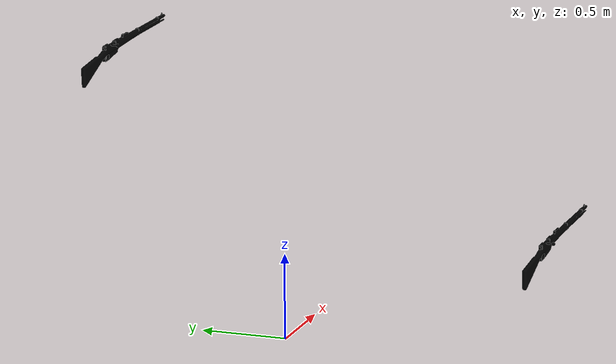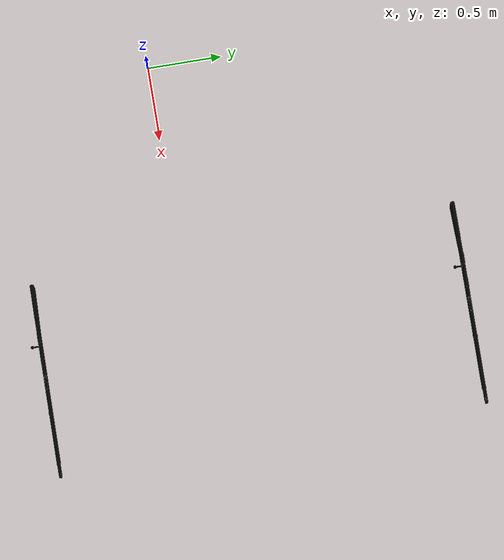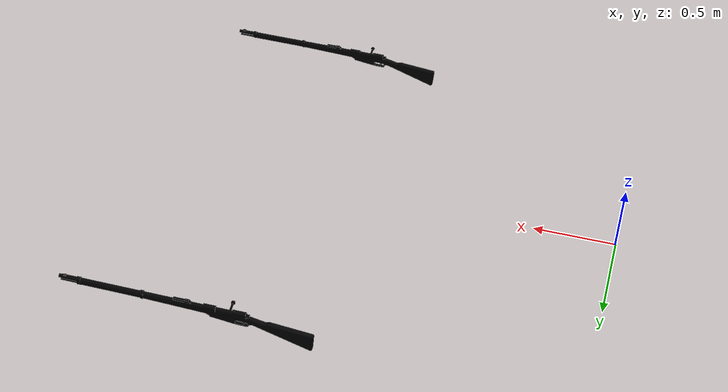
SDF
<sdf version="1.8">
 <world name="simple_trees">
  <plugin name="ignition::gazebo::systems::Physics" filename="ignition-gazebo-physics-system"/>
  <plugin name="ignition::gazebo::systems::UserCommands" filename="ignition-gazebo-user-commands-system"/>
  <plugin name="ignition::gazebo::systems::SceneBroadcaster" filename="ignition-gazebo-scene-broadcaster-system"/>
  <plugin name="ignition::gazebo::systems::Contact" filename="ignition-gazebo-contact-system"/>
  <light name="sun" type="directional">
   <pose>0 0 10 0 -0 0</pose>
   <diffuse>0.8 0.8 0.8 1</diffuse>
   <specular>0.2 0.2 0.2 1</specular>
   <attenuation>
    <range>1000</range>
    <constant>0.9</constant>
    <linear>0.01</linear>
    <quadratic>0.001</quadratic>
   </attenuation>
   <direction>-0.5 0.1 -0.9</direction>
  </light>
  <gravity>0 0 -9.81</gravity>
  <magnetic_field>6e-06 2.3e-05 -4.2e-05</magnetic_field>
  <atmosphere type="adiabatic"/>
  <physics name="default_physics" type="ignored">
   <max_step_size>0.01</max_step_size>
   <real_time_factor>1</real_time_factor>
   <real_time_update_rate>100</real_time_update_rate>
  </physics>
  <scene><ambient>1.0 1.0 1.0</ambient><background>0.8 0.8 0.8</background><shadows>1</shadows></scene>
  <spherical_coordinates>
   <latitude_deg>0.0</latitude_deg>
   <longitude_deg>0.0</longitude_deg>
   <elevation>10.0</elevation>
   <heading_deg>0</heading_deg>
   <surface_model>EARTH_WGS84</surface_model>
  </spherical_coordinates>
  <model name="grass_plane_override">
   <link name="link"><thermal><temperature>295</temperature></thermal></link>
  </model>
  <include><uri>model://gun</uri><name>Gun_1</name><pose>2 1.8 1 0 0 1.57</pose><static>true</static></include>
  <include><uri>model://gun</uri><name>Gun_2</name><pose>2 -1 0 0 0 1.57</pose><static>true</static></include>
 </world>
</sdf>

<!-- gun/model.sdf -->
<sdf version="1.6">
  <model name="gun">
    <static>true</static>
    <link name="link">
      <!-- Thermal override visual for thermal camera -->
      <visual name="heat_mesh">
        <geometry>
          <mesh>
            <uri>model://gun/meshes/gun.obj</uri>
            <scale>1 1 1</scale>
          </mesh>
        </geometry>
        <material>
          <ambient>0 0 0 0</ambient>
          <diffuse>0 0 0 0</diffuse>
          <specular>0 0 0 0</specular>
          <transparency>1.0</transparency>
        </material>
        <plugin filename="ignition-gazebo-thermal-system"
                name="ignition::gazebo::systems::Thermal">
          <temperature>323.15</temperature>
          <emissivity>0.95</emissivity>
        </plugin>
      </visual>
      <visual name="visual">
        <geometry>
          <mesh>
            <uri>model://gun/meshes/gun.obj</uri>
          </mesh>
        </geometry>
        <plugin filename="ignition-gazebo-thermal-system"
                name="ignition::gazebo::systems::Thermal">
          <temperature>300.15</temperature>
          <emissivity>0.95</emissivity>
        </plugin>
      </visual>

      <collision name="collision">
        <geometry>
          <mesh><uri>model://gun/meshes/gun.stl</uri></mesh>
        </geometry>
      </collision>
    </link>
  </model>
</sdf>
